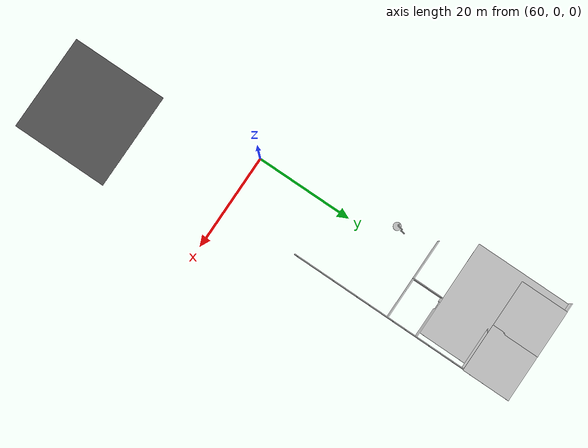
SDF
<sdf version="1.6">
 <world name="default">
  <model name="mainoffice">
   <pose>42.7555 15.4488 0 0 -0 0</pose>
   <link name="Wall_118">
    <collision name="Wall_118_Collision">
     <geometry><box><size>21.25 0.15 2.5</size></box></geometry>
     <pose>0 0 1.25 0 -0 0</pose>
    </collision>
    <visual name="Wall_118_Visual">
     <pose>0 0 1.25 0 -0 0</pose>
     <geometry><box><size>21.25 0.15 2.5</size></box></geometry>
     <material>
      <script>
       <uri>model://office_env/materials/scripts</uri>
       <uri>model://office_env/materials/textures</uri>
       <name>wall</name>
      </script>
      <ambient>1 1 1 1</ambient>
     </material>
    </visual>
    <pose>17.9009 47.325 0 0 -0 0</pose>
   </link>
   <link name="Wall_122">
    <collision name="Wall_122_Collision">
     <geometry><box><size>47.5 0.15 2.5</size></box></geometry>
     <pose>0 0 1.25 0 -0 0</pose>
    </collision>
    <visual name="Wall_122_Visual">
     <pose>0 0 1.25 0 -0 0</pose>
     <geometry><box><size>47.5 0.15 2.5</size></box></geometry>
     <material>
      <script>
       <uri>model://office_env/materials/scripts</uri>
       <uri>model://office_env/materials/textures</uri>
       <name>wall</name>
      </script>
      <ambient>1 1 1 1</ambient>
     </material>
    </visual>
    <pose>28.4509 23.65 0 0 0 -1.5708</pose>
   </link>
   <link name="Wall_146">
    <collision name="Wall_146_Collision">
     <geometry><box><size>17 0.15 2.5</size></box></geometry>
     <pose>0 0 1.25 0 -0 0</pose>
    </collision>
    <visual name="Wall_146_Visual">
     <pose>0 0 1.25 0 -0 0</pose>
     <geometry><box><size>17 0.15 2.5</size></box></geometry>
     <material>
      <script>
       <uri>model://office_env/materials/scripts</uri>
       <uri>model://office_env/materials/textures</uri>
       <name>wall</name>
      </script>
      <ambient>1 1 1 1</ambient>
     </material>
    </visual>
    <pose>19.9197 20.665 0 0 -0 0</pose>
   </link>
   <link name="Wall_148">
    <collision name="Wall_148_Collision">
     <geometry><box><size>6.5 0.15 2.5</size></box></geometry>
     <pose>0 0 1.25 0 -0 0</pose>
    </collision>
    <visual name="Wall_148_Visual">
     <pose>0 0 1.25 0 -0 0</pose>
     <geometry><box><size>6.5 0.15 2.5</size></box></geometry>
     <material>
      <script>
       <uri>model://office_env/materials/scripts</uri>
       <uri>model://office_env/materials/textures</uri>
       <name>wall</name>
      </script>
      <ambient>1 1 1 1</ambient>
     </material>
    </visual>
    <pose>19.8285 23.84 0 0 -0 1.5708</pose>
   </link>
   <link name="Wall_149">
    <pose>24.1285 27.015 0 0 -0 0</pose>
    <visual name="Wall_149_Visual_0">
     <pose>-3.8969 0 1.25 0 -0 0</pose>
     <geometry><box><size>0.956204 0.15 2.5</size></box></geometry>
     <material>
      <script>
       <uri>model://office_env/materials/scripts</uri>
       <uri>model://office_env/materials/textures</uri>
       <name>wall</name>
      </script>
      <ambient>1 1 1 1</ambient>
     </material>
    </visual>
    <collision name="Wall_149_Collision_0">
     <geometry><box><size>0.956204 0.15 2.5</size></box></geometry>
     <pose>-3.8969 0 1.25 0 -0 0</pose>
    </collision>
    <visual name="Wall_149_Visual_1">
     <pose>1.2281 0 1.25 0 -0 0</pose>
     <geometry><box><size>6.2938 0.15 2.5</size></box></geometry>
     <material>
      <script>
       <uri>model://office_env/materials/scripts</uri>
       <uri>model://office_env/materials/textures</uri>
       <name>wall</name>
      </script>
      <ambient>1 1 1 1</ambient>
     </material>
    </visual>
    <collision name="Wall_149_Collision_1">
     <geometry><box><size>6.2938 0.15 2.5</size></box></geometry>
     <pose>1.2281 0 1.25 0 -0 0</pose>
    </collision>
    <visual name="Wall_149_Visual_2">
     <pose>-2.6688 0 2.25 0 -0 0</pose>
     <geometry><box><size>1.5 0.15 0.5</size></box></geometry>
     <material>
      <script>
       <uri>model://office_env/materials/scripts</uri>
       <uri>model://office_env/materials/textures</uri>
       <name>wall</name>
      </script>
      <ambient>1 1 1 1</ambient>
     </material>
    </visual>
    <collision name="Wall_149_Collision_2">
     <geometry><box><size>1.5 0.15 0.5</size></box></geometry>
     <pose>-2.6688 0 2.25 0 -0 0</pose>
    </collision>
   </link>
   <static>1</static>
  </model>
  <model name="asphalt_plane">
   <static>1</static>
   <link name="link">
    <collision name="collision"><geometry><box><size>20 20 0.1</size></box></geometry></collision>
    <visual name="visual">
     <cast_shadows>0</cast_shadows>
     <geometry><box><size>20 20 0.1</size></box></geometry>
     <material>
      <script>
       <uri>model://asphalt_plane/materials/scripts</uri>
       <uri>model://asphalt_plane/materials/textures</uri>
       <name>vrc/asphalt</name>
      </script>
     </material>
    </visual>
   </link>
   <pose>70.7475 -31.5972 0 0 -0 0</pose>
  </model>
  <model name="double_pendulum_with_base">
   <link name="base">
    <inertial>
     <mass>100</mass>
     <inertia><ixx>1</ixx><ixy>0</ixy><ixz>0</ixz><iyy>1</iyy><iyz>0</iyz><izz>1</izz></inertia>
    </inertial>
    <visual name="vis_plate_on_ground">
     <pose>0 0 0.01 0 -0 0</pose>
     <geometry><cylinder><radius>0.8</radius><length>0.02</length></cylinder></geometry>
     <material>
      <script>
       <uri>model://office_env/materials/scripts</uri>
       <uri>model://office_env/materials/textures</uri>
       <name>wall</name>
      </script>
     </material>
    </visual>
    <visual name="vis_pole">
     <pose>-0.275 0 1.1 0 -0 0</pose>
     <geometry><box><size>0.2 0.2 2.2</size></box></geometry>
     <material>
      <script>
       <uri>model://office_env/materials/scripts</uri>
       <uri>model://office_env/materials/textures</uri>
       <name>wall</name>
      </script>
     </material>
    </visual>
    <collision name="col_plate_on_ground">
     <pose>0 0 0.01 0 -0 0</pose>
     <geometry><cylinder><radius>0.8</radius><length>0.02</length></cylinder></geometry>
    </collision>
    <collision name="col_pole">
     <pose>-0.275 0 1.1 0 -0 0</pose>
     <geometry><box><size>0.2 0.2 2.2</size></box></geometry>
    </collision>
   </link>
   <link name="upper_link">
    <pose>0 0 2.1 -1.5708 0 0</pose>
    <inertial>
     <pose>0 0 0.5 0 -0 0</pose>
     <inertia><ixx>1</ixx><ixy>0</ixy><ixz>0</ixz><iyy>1</iyy><iyz>0</iyz><izz>1</izz></inertia>
     <mass>1</mass>
    </inertial>
    <visual name="vis_upper_joint">
     <pose>-0.05 0 0 3.14159 1.57079 3.14159</pose>
     <geometry><cylinder><radius>0.1</radius><length>0.3</length></cylinder></geometry>
     <material>
      <script>
       <uri>model://office_env/materials/scripts</uri>
       <uri>model://office_env/materials/textures</uri>
       <name>wall</name>
      </script>
     </material>
    </visual>
    <visual name="vis_lower_joint">
     <pose>0 0 1 3.14159 1.57079 3.14159</pose>
     <geometry><cylinder><radius>0.1</radius><length>0.2</length></cylinder></geometry>
     <material>
      <script>
       <uri>model://office_env/materials/scripts</uri>
       <uri>model://office_env/materials/textures</uri>
       <name>wall</name>
      </script>
     </material>
    </visual>
    <visual name="vis_cylinder">
     <pose>0 0 0.5 0 -0 0</pose>
     <geometry><cylinder><radius>0.1</radius><length>0.9</length></cylinder></geometry>
     <material>
      <script>
       <uri>model://office_env/materials/scripts</uri>
       <uri>model://office_env/materials/textures</uri>
       <name>wall</name>
      </script>
     </material>
    </visual>
    <collision name="col_upper_joint">
     <pose>-0.05 0 0 3.14159 1.57079 3.14159</pose>
     <geometry><cylinder><radius>0.1</radius><length>0.3</length></cylinder></geometry>
    </collision>
    <collision name="col_lower_joint">
     <pose>0 0 1 3.14159 1.57079 3.14159</pose>
     <geometry><cylinder><radius>0.1</radius><length>0.2</length></cylinder></geometry>
    </collision>
    <collision name="col_cylinder">
     <pose>0 0 0.5 0 -0 0</pose>
     <geometry><cylinder><radius>0.1</radius><length>0.9</length></cylinder></geometry>
    </collision>
   </link>
   <link name="lower_link">
    <pose>0.25 1 2.1 -2 0 0</pose>
    <inertial>
     <pose>0 0 0.5 0 -0 0</pose>
     <inertia><ixx>1</ixx><ixy>0</ixy><ixz>0</ixz><iyy>1</iyy><iyz>0</iyz><izz>1</izz></inertia>
     <mass>1</mass>
    </inertial>
    <visual name="vis_lower_joint">
     <pose>0 0 0 3.14159 1.57079 3.14159</pose>
     <geometry><cylinder><radius>0.08</radius><length>0.3</length></cylinder></geometry>
     <material>
      <script>
       <uri>model://office_env/materials/scripts</uri>
       <uri>model://office_env/materials/textures</uri>
       <name>wall</name>
      </script>
     </material>
    </visual>
    <visual name="vis_cylinder">
     <pose>0 0 0.5 0 -0 0</pose>
     <geometry><cylinder><radius>0.1</radius><length>0.9</length></cylinder></geometry>
     <material>
      <script>
       <uri>model://office_env/materials/scripts</uri>
       <uri>model://office_env/materials/textures</uri>
       <name>wall</name>
      </script>
     </material>
    </visual>
    <collision name="col_lower_joint">
     <pose>0 0 0 3.14159 1.57079 3.14159</pose>
     <geometry><cylinder><radius>0.08</radius><length>0.3</length></cylinder></geometry>
    </collision>
    <collision name="col_cylinder">
     <pose>0 0 0.5 0 -0 0</pose>
     <geometry><cylinder><radius>0.1</radius><length>0.9</length></cylinder></geometry>
    </collision>
   </link>
   <joint name="upper_joint" type="revolute">
    <parent>base</parent>
    <child>upper_link</child>
    <axis>
     <xyz>1 0 0</xyz>
     <use_parent_model_frame>1</use_parent_model_frame>
     <limit><lower>-1e+16</lower><upper>1e+16</upper></limit>
     <dynamics><spring_reference>0</spring_reference><spring_stiffness>0</spring_stiffness></dynamics>
    </axis>
   </joint>
   <joint name="lower_joint" type="revolute">
    <parent>upper_link</parent>
    <child>lower_link</child>
    <axis>
     <xyz>1 0 0</xyz>
     <use_parent_model_frame>1</use_parent_model_frame>
     <limit><lower>-1e+16</lower><upper>1e+16</upper></limit>
     <dynamics><spring_reference>0</spring_reference><spring_stiffness>0</spring_stiffness></dynamics>
    </axis>
   </joint>
   <pose>56.0792 28.2769 0.03498 -6e-06 -2.7e-05 -0.18478</pose>
  </model>
  <model name="Floor_34">
   <link name="main">
    <pose>0 0 0.01 0 -0 0</pose>
    <collision name="main_Collision"><geometry><box><size>20 20 0.05</size></box></geometry></collision>
    <visual name="main_Visual">
     <geometry><box><size>20 20 0.05</size></box></geometry>
     <material>
      <script>
       <uri>model://Floor_medium/materials/scripts</uri>
       <uri>model://Floor_medium/materials/textures</uri>
       <name>floor</name>
      </script>
     </material>
    </visual>
   </link>
   <static>1</static>
   <pose>60.1672 52.7557 0 0 -0 0</pose>
  </model>
  <model name="Floor_35">
   <link name="main">
    <pose>0 0 0.01 0 -0 0</pose>
    <collision name="main_Collision"><geometry><box><size>10 10 0.05</size></box></geometry></collision>
    <visual name="main_Visual">
     <geometry><box><size>10 10 0.05</size></box></geometry>
     <material>
      <script>
       <uri>model://Floor_small/materials/scripts</uri>
       <uri>model://Floor_small/materials/textures</uri>
       <name>floor</name>
      </script>
     </material>
    </visual>
   </link>
   <static>1</static>
   <pose>66.2217 57.7646 0 0 -0 0</pose>
  </model>
  <model name="Floor_3_clone_22">
   <link name="main">
    <pose>0 0 0.01 0 -0 0</pose>
    <collision name="main_Collision"><geometry><box><size>10 10 0.05</size></box></geometry></collision>
    <visual name="main_Visual">
     <geometry><box><size>10 10 0.05</size></box></geometry>
     <material>
      <script>
       <uri>model://Floor_small/materials/scripts</uri>
       <uri>model://Floor_small/materials/textures</uri>
       <name>floor</name>
      </script>
     </material>
    </visual>
   </link>
   <static>1</static>
   <pose>66.4481 57.8484 2.5 0 -0 0</pose>
  </model>
  <model name="Floor_3_clone_23">
   <link name="main">
    <pose>0 0 0.01 0 -0 0</pose>
    <collision name="main_Collision"><geometry><box><size>10 10 0.05</size></box></geometry></collision>
    <visual name="main_Visual">
     <geometry><box><size>10 10 0.05</size></box></geometry>
     <material>
      <script>
       <uri>model://Floor_small/materials/scripts</uri>
       <uri>model://Floor_small/materials/textures</uri>
       <name>floor</name>
      </script>
     </material>
    </visual>
   </link>
   <static>1</static>
   <pose>56.7822 57.8754 2.5 0 -0 0</pose>
  </model>
 </world>
</sdf>
